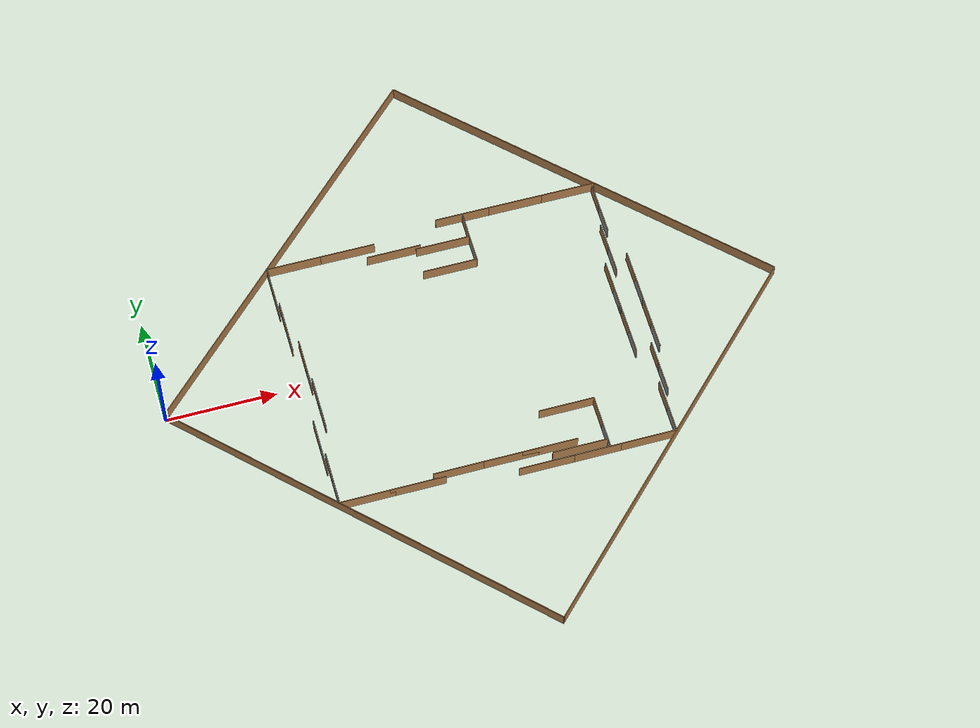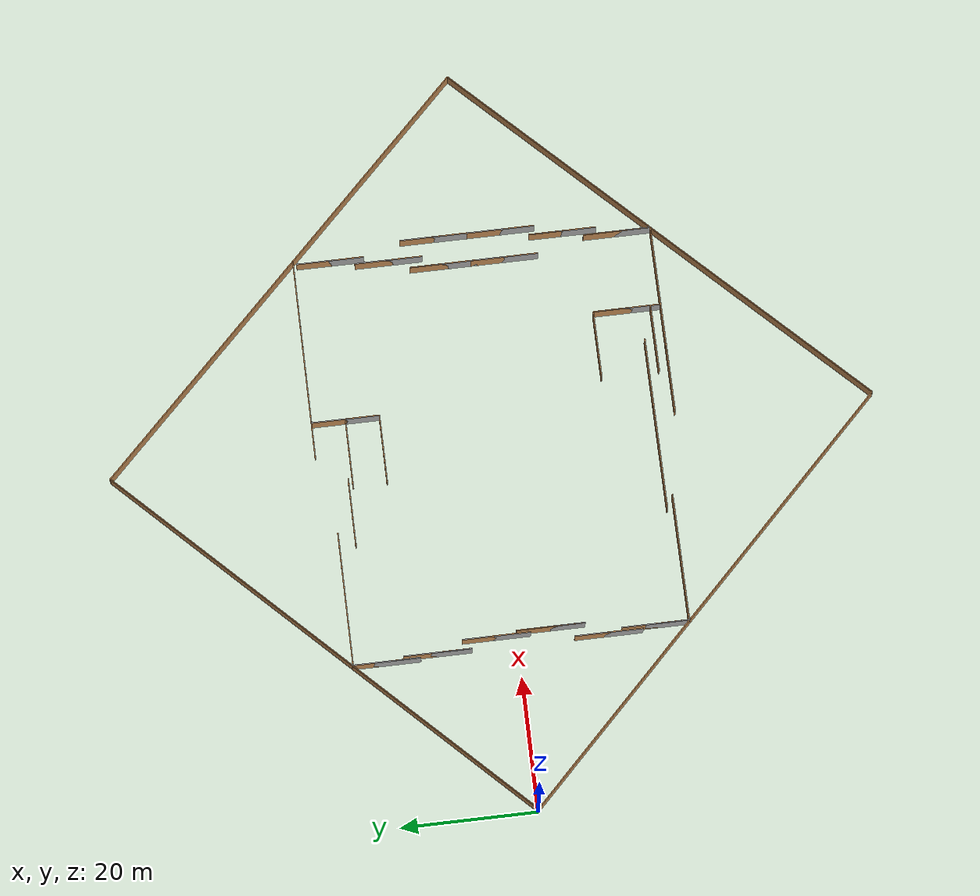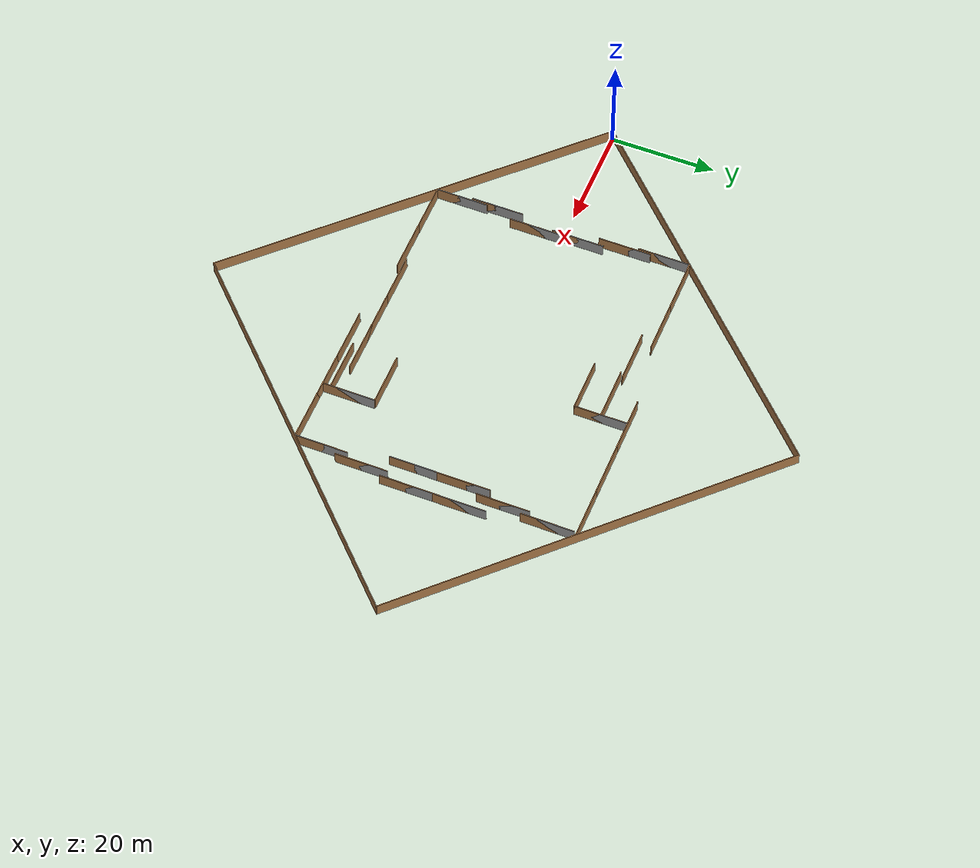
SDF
<sdf version="1.5">
 <world name="__default__">
  <physics name="default_physics" default="0" type="ode">
   <max_step_size>0.001</max_step_size>
   <real_time_factor>1</real_time_factor>
   <real_time_update_rate>1000</real_time_update_rate>
   <gravity>0 0 -9.8</gravity>
   <magnetic_field>5.5645e-06 2.28758e-05 -4.23884e-05</magnetic_field>
  </physics>
  <scene><ambient>0.4 0.4 0.4 1</ambient><background>0.7 0.7 0.7 1</background><shadows>1</shadows></scene>
  <spherical_coordinates>
   <surface_model>EARTH_WGS84</surface_model>
   <latitude_deg>0</latitude_deg>
   <longitude_deg>0</longitude_deg>
   <elevation>0</elevation>
   <heading_deg>0</heading_deg>
  </spherical_coordinates>
  <model name="LoZ">
   <pose>56 -0 0 0 -0 0</pose>
   <link name="Wall_0">
    <collision name="Wall_0_Collision">
     <geometry><box><size>79.346 0.15 2.5</size></box></geometry>
     <pose>0 0 1.25 0 -0 0</pose>
    </collision>
    <visual name="Wall_0_Visual">
     <pose>0 0 1.25 0 -0 0</pose>
     <geometry><box><size>79.346 0.15 2.5</size></box></geometry>
     <material>
      <script><uri>file://media/materials/scripts/gazebo.material</uri><name>Gazebo/Wood</name></script>
      <ambient>1 1 1 1</ambient>
     </material>
    </visual>
    <pose>-28 -28 0 0 0 -0.785398</pose>
   </link>
   <link name="Wall_4">
    <collision name="Wall_4_Collision">
     <geometry><box><size>79.346 0.15 2.5</size></box></geometry>
     <pose>0 0 1.25 0 -0 0</pose>
    </collision>
    <visual name="Wall_4_Visual">
     <pose>0 0 1.25 0 -0 0</pose>
     <geometry><box><size>79.346 0.15 2.5</size></box></geometry>
     <material>
      <script><uri>file://media/materials/scripts/gazebo.material</uri><name>Gazebo/Wood</name></script>
      <ambient>1 1 1 1</ambient>
     </material>
    </visual>
    <pose>-28 28 0 0 -0 0.785398</pose>
   </link>
   <link name="Wall_6">
    <collision name="Wall_6_Collision">
     <geometry><box><size>79.346 0.15 2.5</size></box></geometry>
     <pose>0 0 1.25 0 -0 0</pose>
    </collision>
    <visual name="Wall_6_Visual">
     <pose>0 0 1.25 0 -0 0</pose>
     <geometry><box><size>79.346 0.15 2.5</size></box></geometry>
     <material>
      <script><uri>file://media/materials/scripts/gazebo.material</uri><name>Gazebo/Wood</name></script>
      <ambient>1 1 1 1</ambient>
     </material>
    </visual>
    <pose>28 28 0 0 -0 2.35619</pose>
   </link>
   <link name="Wall_8">
    <collision name="Wall_8_Collision">
     <geometry><box><size>79.346 0.15 2.5</size></box></geometry>
     <pose>0 0 1.25 0 -0 0</pose>
    </collision>
    <visual name="Wall_8_Visual">
     <pose>0 0 1.25 0 -0 0</pose>
     <geometry><box><size>79.346 0.15 2.5</size></box></geometry>
     <material>
      <script><uri>file://media/materials/scripts/gazebo.material</uri><name>Gazebo/Wood</name></script>
      <ambient>1 1 1 1</ambient>
     </material>
    </visual>
    <pose>28 -28 0 0 -0 0.785398</pose>
   </link>
   <static>1</static>
  </model>
  <model name="wall-10m-amodi">
   <pose>24.0911 19.1682 0 0 -0 0</pose>
   <link name="Wall_24">
    <collision name="Wall_24_Collision">
     <geometry><box><size>10 0.15 2.5</size></box></geometry>
     <pose>0 0 1.25 0 -0 0</pose>
    </collision>
    <visual name="Wall_24_Visual">
     <pose>0 0 1.25 0 -0 0</pose>
     <geometry><box><size>10 0.15 2.5</size></box></geometry>
     <material>
      <script><uri>file://media/materials/scripts/gazebo.material</uri><name>Gazebo/Grey</name></script>
      <ambient>1 1 1 1</ambient>
     </material>
    </visual>
    <pose>0 -0 0 0 0 -1.5708</pose>
   </link>
   <link name="Wall_25">
    <collision name="Wall_25_Collision">
     <geometry><box><size>10 0.15 2.5</size></box></geometry>
     <pose>0 0 1.25 0 -0 0</pose>
    </collision>
    <visual name="Wall_25_Visual">
     <pose>0 0 1.25 0 -0 0</pose>
     <geometry><box><size>10 0.15 2.5</size></box></geometry>
     <material>
      <script><uri>file://media/materials/scripts/gazebo.material</uri><name>Gazebo/Wood</name></script>
      <ambient>1 1 1 1</ambient>
     </material>
    </visual>
    <pose>0 -0 0 0 -0 1.5708</pose>
   </link>
   <static>1</static>
  </model>
  <model name="wall-10m-amodi_0">
   <pose>24.5527 11.6245 0 0 -0 0</pose>
   <link name="Wall_24">
    <collision name="Wall_24_Collision">
     <geometry><box><size>10 0.15 2.5</size></box></geometry>
     <pose>0 0 1.25 0 -0 0</pose>
    </collision>
    <visual name="Wall_24_Visual">
     <pose>0 0 1.25 0 -0 0</pose>
     <geometry><box><size>10 0.15 2.5</size></box></geometry>
     <material>
      <script><uri>file://media/materials/scripts/gazebo.material</uri><name>Gazebo/Grey</name></script>
      <ambient>1 1 1 1</ambient>
     </material>
    </visual>
    <pose>0 -0 0 0 0 -1.5708</pose>
   </link>
   <link name="Wall_25">
    <collision name="Wall_25_Collision">
     <geometry><box><size>10 0.15 2.5</size></box></geometry>
     <pose>0 0 1.25 0 -0 0</pose>
    </collision>
    <visual name="Wall_25_Visual">
     <pose>0 0 1.25 0 -0 0</pose>
     <geometry><box><size>10 0.15 2.5</size></box></geometry>
     <material>
      <script><uri>file://media/materials/scripts/gazebo.material</uri><name>Gazebo/Wood</name></script>
      <ambient>1 1 1 1</ambient>
     </material>
    </visual>
    <pose>0 -0 0 0 -0 1.5708</pose>
   </link>
   <static>1</static>
  </model>
  <model name="wall-10m-amodi_1">
   <pose>25.0606 -20.1073 0 0 -0 0</pose>
   <link name="Wall_24">
    <collision name="Wall_24_Collision">
     <geometry><box><size>10 0.15 2.5</size></box></geometry>
     <pose>0 0 1.25 0 -0 0</pose>
    </collision>
    <visual name="Wall_24_Visual">
     <pose>0 0 1.25 0 -0 0</pose>
     <geometry><box><size>10 0.15 2.5</size></box></geometry>
     <material>
      <script><uri>file://media/materials/scripts/gazebo.material</uri><name>Gazebo/Grey</name></script>
      <ambient>1 1 1 1</ambient>
     </material>
    </visual>
    <pose>0 -0 0 0 0 -1.5708</pose>
   </link>
   <link name="Wall_25">
    <collision name="Wall_25_Collision">
     <geometry><box><size>10 0.15 2.5</size></box></geometry>
     <pose>0 0 1.25 0 -0 0</pose>
    </collision>
    <visual name="Wall_25_Visual">
     <pose>0 0 1.25 0 -0 0</pose>
     <geometry><box><size>10 0.15 2.5</size></box></geometry>
     <material>
      <script><uri>file://media/materials/scripts/gazebo.material</uri><name>Gazebo/Wood</name></script>
      <ambient>1 1 1 1</ambient>
     </material>
    </visual>
    <pose>0 -0 0 0 -0 1.5708</pose>
   </link>
   <static>1</static>
  </model>
  <model name="wall-10m-amodi_2">
   <pose>24.6024 -13.2175 0 0 -0 0</pose>
   <link name="Wall_24">
    <collision name="Wall_24_Collision">
     <geometry><box><size>10 0.15 2.5</size></box></geometry>
     <pose>0 0 1.25 0 -0 0</pose>
    </collision>
    <visual name="Wall_24_Visual">
     <pose>0 0 1.25 0 -0 0</pose>
     <geometry><box><size>10 0.15 2.5</size></box></geometry>
     <material>
      <script><uri>file://media/materials/scripts/gazebo.material</uri><name>Gazebo/Grey</name></script>
      <ambient>1 1 1 1</ambient>
     </material>
    </visual>
    <pose>0 -0 0 0 0 -1.5708</pose>
   </link>
   <link name="Wall_25">
    <collision name="Wall_25_Collision">
     <geometry><box><size>10 0.15 2.5</size></box></geometry>
     <pose>0 0 1.25 0 -0 0</pose>
    </collision>
    <visual name="Wall_25_Visual">
     <pose>0 0 1.25 0 -0 0</pose>
     <geometry><box><size>10 0.15 2.5</size></box></geometry>
     <material>
      <script><uri>file://media/materials/scripts/gazebo.material</uri><name>Gazebo/Wood</name></script>
      <ambient>1 1 1 1</ambient>
     </material>
    </visual>
    <pose>0 -0 0 0 -0 1.5708</pose>
   </link>
   <static>1</static>
  </model>
  <model name="wall-10m-amodi_3">
   <pose>26 3 0 0 -0 0</pose>
   <link name="Wall_24">
    <collision name="Wall_24_Collision">
     <geometry><box><size>10 0.15 2.5</size></box></geometry>
     <pose>0 0 1.25 0 -0 0</pose>
    </collision>
    <visual name="Wall_24_Visual">
     <pose>0 0 1.25 0 -0 0</pose>
     <geometry><box><size>10 0.15 2.5</size></box></geometry>
     <material>
      <script><uri>file://media/materials/scripts/gazebo.material</uri><name>Gazebo/Grey</name></script>
      <ambient>1 1 1 1</ambient>
     </material>
    </visual>
    <pose>0 -0 0 0 0 -1.5708</pose>
   </link>
   <link name="Wall_25">
    <collision name="Wall_25_Collision">
     <geometry><box><size>10 0.15 2.5</size></box></geometry>
     <pose>0 0 1.25 0 -0 0</pose>
    </collision>
    <visual name="Wall_25_Visual">
     <pose>0 0 1.25 0 -0 0</pose>
     <geometry><box><size>10 0.15 2.5</size></box></geometry>
     <material>
      <script><uri>file://media/materials/scripts/gazebo.material</uri><name>Gazebo/Wood</name></script>
      <ambient>1 1 1 1</ambient>
     </material>
    </visual>
    <pose>0 -0 0 0 -0 1.5708</pose>
   </link>
   <static>1</static>
  </model>
  <model name="wall-10m-amodi_4">
   <pose>26.4413 -5 0 0 -0 0</pose>
   <link name="Wall_24">
    <collision name="Wall_24_Collision">
     <geometry><box><size>10 0.15 2.5</size></box></geometry>
     <pose>0 0 1.25 0 -0 0</pose>
    </collision>
    <visual name="Wall_24_Visual">
     <pose>0 0 1.25 0 -0 0</pose>
     <geometry><box><size>10 0.15 2.5</size></box></geometry>
     <material>
      <script><uri>file://media/materials/scripts/gazebo.material</uri><name>Gazebo/Grey</name></script>
      <ambient>1 1 1 1</ambient>
     </material>
    </visual>
    <pose>0 -0 0 0 0 -1.5708</pose>
   </link>
   <link name="Wall_25">
    <collision name="Wall_25_Collision">
     <geometry><box><size>10 0.15 2.5</size></box></geometry>
     <pose>0 0 1.25 0 -0 0</pose>
    </collision>
    <visual name="Wall_25_Visual">
     <pose>0 0 1.25 0 -0 0</pose>
     <geometry><box><size>10 0.15 2.5</size></box></geometry>
     <material>
      <script><uri>file://media/materials/scripts/gazebo.material</uri><name>Gazebo/Wood</name></script>
      <ambient>1 1 1 1</ambient>
     </material>
    </visual>
    <pose>0 -0 0 0 -0 1.5708</pose>
   </link>
   <static>1</static>
  </model>
  <model name="wall-10m-ofoghi">
   <pose>29 24 0 0 -0 0</pose>
   <link name="Wall_22">
    <collision name="Wall_22_Collision">
     <geometry><box><size>10 0.15 2.5</size></box></geometry>
     <pose>0 0 1.25 0 -0 0</pose>
    </collision>
    <visual name="Wall_22_Visual">
     <pose>0 0 1.25 0 -0 0</pose>
     <geometry><box><size>10 0.15 2.5</size></box></geometry>
     <material>
      <script><uri>file://media/materials/scripts/gazebo.material</uri><name>Gazebo/Wood</name></script>
      <ambient>1 1 1 1</ambient>
     </material>
    </visual>
   </link>
   <static>1</static>
  </model>
  <model name="wall-10m-ofoghi_0">
   <pose>39 24 0 0 -0 0</pose>
   <link name="Wall_22">
    <collision name="Wall_22_Collision">
     <geometry><box><size>10 0.15 2.5</size></box></geometry>
     <pose>0 0 1.25 0 -0 0</pose>
    </collision>
    <visual name="Wall_22_Visual">
     <pose>0 0 1.25 0 -0 0</pose>
     <geometry><box><size>10 0.15 2.5</size></box></geometry>
     <material>
      <script><uri>file://media/materials/scripts/gazebo.material</uri><name>Gazebo/Wood</name></script>
      <ambient>1 1 1 1</ambient>
     </material>
    </visual>
   </link>
   <static>1</static>
  </model>
  <model name="wall-10m-ofoghi_1">
   <pose>47 21.5949 0 0 -0 0</pose>
   <link name="Wall_22">
    <collision name="Wall_22_Collision">
     <geometry><box><size>10 0.15 2.5</size></box></geometry>
     <pose>0 0 1.25 0 -0 0</pose>
    </collision>
    <visual name="Wall_22_Visual">
     <pose>0 0 1.25 0 -0 0</pose>
     <geometry><box><size>10 0.15 2.5</size></box></geometry>
     <material>
      <script><uri>file://media/materials/scripts/gazebo.material</uri><name>Gazebo/Wood</name></script>
      <ambient>1 1 1 1</ambient>
     </material>
    </visual>
   </link>
   <static>1</static>
  </model>
  <model name="wall-10m-ofoghi_2">
   <pose>56 21 0 0 -0 0</pose>
   <link name="Wall_22">
    <collision name="Wall_22_Collision">
     <geometry><box><size>10 0.15 2.5</size></box></geometry>
     <pose>0 0 1.25 0 -0 0</pose>
    </collision>
    <visual name="Wall_22_Visual">
     <pose>0 0 1.25 0 -0 0</pose>
     <geometry><box><size>10 0.15 2.5</size></box></geometry>
     <material>
      <script><uri>file://media/materials/scripts/gazebo.material</uri><name>Gazebo/Wood</name></script>
      <ambient>1 1 1 1</ambient>
     </material>
    </visual>
   </link>
   <static>1</static>
  </model>
  <model name="wall-10m-ofoghi_3">
   <pose>81 26 0 0 -0 0</pose>
   <link name="Wall_22">
    <collision name="Wall_22_Collision">
     <geometry><box><size>10 0.15 2.5</size></box></geometry>
     <pose>0 0 1.25 0 -0 0</pose>
    </collision>
    <visual name="Wall_22_Visual">
     <pose>0 0 1.25 0 -0 0</pose>
     <geometry><box><size>10 0.15 2.5</size></box></geometry>
     <material>
      <script><uri>file://media/materials/scripts/gazebo.material</uri><name>Gazebo/Wood</name></script>
      <ambient>1 1 1 1</ambient>
     </material>
    </visual>
   </link>
   <static>1</static>
  </model>
  <model name="wall-10m-ofoghi_4">
   <pose>71 26 0 0 -0 0</pose>
   <link name="Wall_22">
    <collision name="Wall_22_Collision">
     <geometry><box><size>10 0.15 2.5</size></box></geometry>
     <pose>0 0 1.25 0 -0 0</pose>
    </collision>
    <visual name="Wall_22_Visual">
     <pose>0 0 1.25 0 -0 0</pose>
     <geometry><box><size>10 0.15 2.5</size></box></geometry>
     <material>
      <script><uri>file://media/materials/scripts/gazebo.material</uri><name>Gazebo/Wood</name></script>
      <ambient>1 1 1 1</ambient>
     </material>
    </visual>
   </link>
   <static>1</static>
  </model>
  <model name="wall-10m-ofoghi_5">
   <pose>61 26 0 0 -0 0</pose>
   <link name="Wall_22">
    <collision name="Wall_22_Collision">
     <geometry><box><size>10 0.15 2.5</size></box></geometry>
     <pose>0 0 1.25 0 -0 0</pose>
    </collision>
    <visual name="Wall_22_Visual">
     <pose>0 0 1.25 0 -0 0</pose>
     <geometry><box><size>10 0.15 2.5</size></box></geometry>
     <material>
      <script><uri>file://media/materials/scripts/gazebo.material</uri><name>Gazebo/Wood</name></script>
      <ambient>1 1 1 1</ambient>
     </material>
    </visual>
   </link>
   <static>1</static>
  </model>
  <model name="wall-10m-ofoghi_3_clone">
   <pose>30 -25 0 0 -0 0</pose>
   <link name="Wall_22">
    <collision name="Wall_22_Collision">
     <geometry><box><size>10 0.15 2.5</size></box></geometry>
     <pose>0 0 1.25 0 -0 0</pose>
    </collision>
    <visual name="Wall_22_Visual">
     <pose>0 0 1.25 0 -0 0</pose>
     <geometry><box><size>10 0.15 2.5</size></box></geometry>
     <material>
      <script><uri>file://media/materials/scripts/gazebo.material</uri><name>Gazebo/Wood</name></script>
      <ambient>1 1 1 1</ambient>
     </material>
    </visual>
   </link>
   <static>1</static>
  </model>
  <model name="wall-10m-ofoghi_3_clone_0">
   <pose>39 -25 0 0 -0 0</pose>
   <link name="Wall_22">
    <collision name="Wall_22_Collision">
     <geometry><box><size>10 0.15 2.5</size></box></geometry>
     <pose>0 0 1.25 0 -0 0</pose>
    </collision>
    <visual name="Wall_22_Visual">
     <pose>0 0 1.25 0 -0 0</pose>
     <geometry><box><size>10 0.15 2.5</size></box></geometry>
     <material>
      <script><uri>file://media/materials/scripts/gazebo.material</uri><name>Gazebo/Wood</name></script>
      <ambient>1 1 1 1</ambient>
     </material>
    </visual>
   </link>
   <static>1</static>
  </model>
  <model name="wall-10m-ofoghi_3_clone_1">
   <pose>80 -27 0 0 -0 0</pose>
   <link name="Wall_22">
    <collision name="Wall_22_Collision">
     <geometry><box><size>10 0.15 2.5</size></box></geometry>
     <pose>0 0 1.25 0 -0 0</pose>
    </collision>
    <visual name="Wall_22_Visual">
     <pose>0 0 1.25 0 -0 0</pose>
     <geometry><box><size>10 0.15 2.5</size></box></geometry>
     <material>
      <script><uri>file://media/materials/scripts/gazebo.material</uri><name>Gazebo/Wood</name></script>
      <ambient>1 1 1 1</ambient>
     </material>
    </visual>
   </link>
   <static>1</static>
  </model>
  <model name="wall-10m-ofoghi_3_clone_2">
   <pose>70.4875 -27 0 0 -0 0</pose>
   <link name="Wall_22">
    <collision name="Wall_22_Collision">
     <geometry><box><size>10 0.15 2.5</size></box></geometry>
     <pose>0 0 1.25 0 -0 0</pose>
    </collision>
    <visual name="Wall_22_Visual">
     <pose>0 0 1.25 0 -0 0</pose>
     <geometry><box><size>10 0.15 2.5</size></box></geometry>
     <material>
      <script><uri>file://media/materials/scripts/gazebo.material</uri><name>Gazebo/Wood</name></script>
      <ambient>1 1 1 1</ambient>
     </material>
    </visual>
   </link>
   <static>1</static>
  </model>
  <model name="wall-10m-ofoghi_3_clone_3">
   <pose>61.5344 -27 0 0 -0 0</pose>
   <link name="Wall_22">
    <collision name="Wall_22_Collision">
     <geometry><box><size>10 0.15 2.5</size></box></geometry>
     <pose>0 0 1.25 0 -0 0</pose>
    </collision>
    <visual name="Wall_22_Visual">
     <pose>0 0 1.25 0 -0 0</pose>
     <geometry><box><size>10 0.15 2.5</size></box></geometry>
     <material>
      <script><uri>file://media/materials/scripts/gazebo.material</uri><name>Gazebo/Wood</name></script>
      <ambient>1 1 1 1</ambient>
     </material>
    </visual>
   </link>
   <static>1</static>
  </model>
  <model name="wall-10m-ofoghi_3_clone_4">
   <pose>47 -24 0 0 -0 0</pose>
   <link name="Wall_22">
    <collision name="Wall_22_Collision">
     <geometry><box><size>10 0.15 2.5</size></box></geometry>
     <pose>0 0 1.25 0 -0 0</pose>
    </collision>
    <visual name="Wall_22_Visual">
     <pose>0 0 1.25 0 -0 0</pose>
     <geometry><box><size>10 0.15 2.5</size></box></geometry>
     <material>
      <script><uri>file://media/materials/scripts/gazebo.material</uri><name>Gazebo/Wood</name></script>
      <ambient>1 1 1 1</ambient>
     </material>
    </visual>
   </link>
   <static>1</static>
  </model>
  <model name="wall-10m-ofoghi_3_clone_5">
   <pose>56 -24 0 0 -0 0</pose>
   <link name="Wall_22">
    <collision name="Wall_22_Collision">
     <geometry><box><size>10 0.15 2.5</size></box></geometry>
     <pose>0 0 1.25 0 -0 0</pose>
    </collision>
    <visual name="Wall_22_Visual">
     <pose>0 0 1.25 0 -0 0</pose>
     <geometry><box><size>10 0.15 2.5</size></box></geometry>
     <material>
      <script><uri>file://media/materials/scripts/gazebo.material</uri><name>Gazebo/Wood</name></script>
      <ambient>1 1 1 1</ambient>
     </material>
    </visual>
   </link>
   <static>1</static>
  </model>
  <model name="wall-10m-ofoghi_3_clone_6">
   <pose>63 -24 0 0 -0 0</pose>
   <link name="Wall_22">
    <collision name="Wall_22_Collision">
     <geometry><box><size>10 0.15 2.5</size></box></geometry>
     <pose>0 0 1.25 0 -0 0</pose>
    </collision>
    <visual name="Wall_22_Visual">
     <pose>0 0 1.25 0 -0 0</pose>
     <geometry><box><size>10 0.15 2.5</size></box></geometry>
     <material>
      <script><uri>file://media/materials/scripts/gazebo.material</uri><name>Gazebo/Wood</name></script>
      <ambient>1 1 1 1</ambient>
     </material>
    </visual>
   </link>
   <static>1</static>
  </model>
  <model name="wall-10m-amodi_2_clone">
   <pose>85 -22 0 0 -0 0</pose>
   <link name="Wall_24">
    <collision name="Wall_24_Collision">
     <geometry><box><size>10 0.15 2.5</size></box></geometry>
     <pose>0 0 1.25 0 -0 0</pose>
    </collision>
    <visual name="Wall_24_Visual">
     <pose>0 0 1.25 0 -0 0</pose>
     <geometry><box><size>10 0.15 2.5</size></box></geometry>
     <material>
      <script><uri>file://media/materials/scripts/gazebo.material</uri><name>Gazebo/Grey</name></script>
      <ambient>1 1 1 1</ambient>
     </material>
    </visual>
    <pose>0 -0 0 0 0 -1.5708</pose>
   </link>
   <link name="Wall_25">
    <collision name="Wall_25_Collision">
     <geometry><box><size>10 0.15 2.5</size></box></geometry>
     <pose>0 0 1.25 0 -0 0</pose>
    </collision>
    <visual name="Wall_25_Visual">
     <pose>0 0 1.25 0 -0 0</pose>
     <geometry><box><size>10 0.15 2.5</size></box></geometry>
     <material>
      <script><uri>file://media/materials/scripts/gazebo.material</uri><name>Gazebo/Wood</name></script>
      <ambient>1 1 1 1</ambient>
     </material>
    </visual>
    <pose>0 -0 0 0 -0 1.5708</pose>
   </link>
   <static>1</static>
  </model>
  <model name="wall-10m-amodi_2_clone_0">
   <pose>86 -14 0 0 -0 0</pose>
   <link name="Wall_24">
    <collision name="Wall_24_Collision">
     <geometry><box><size>10 0.15 2.5</size></box></geometry>
     <pose>0 0 1.25 0 -0 0</pose>
    </collision>
    <visual name="Wall_24_Visual">
     <pose>0 0 1.25 0 -0 0</pose>
     <geometry><box><size>10 0.15 2.5</size></box></geometry>
     <material>
      <script><uri>file://media/materials/scripts/gazebo.material</uri><name>Gazebo/Grey</name></script>
      <ambient>1 1 1 1</ambient>
     </material>
    </visual>
    <pose>0 -0 0 0 0 -1.5708</pose>
   </link>
   <link name="Wall_25">
    <collision name="Wall_25_Collision">
     <geometry><box><size>10 0.15 2.5</size></box></geometry>
     <pose>0 0 1.25 0 -0 0</pose>
    </collision>
    <visual name="Wall_25_Visual">
     <pose>0 0 1.25 0 -0 0</pose>
     <geometry><box><size>10 0.15 2.5</size></box></geometry>
     <material>
      <script><uri>file://media/materials/scripts/gazebo.material</uri><name>Gazebo/Wood</name></script>
      <ambient>1 1 1 1</ambient>
     </material>
    </visual>
    <pose>0 -0 0 0 -0 1.5708</pose>
   </link>
   <static>1</static>
  </model>
  <model name="wall-10m-amodi_2_clone_1">
   <pose>85.467 20.5363 0 0 -0 0</pose>
   <link name="Wall_24">
    <collision name="Wall_24_Collision">
     <geometry><box><size>10 0.15 2.5</size></box></geometry>
     <pose>0 0 1.25 0 -0 0</pose>
    </collision>
    <visual name="Wall_24_Visual">
     <pose>0 0 1.25 0 -0 0</pose>
     <geometry><box><size>10 0.15 2.5</size></box></geometry>
     <material>
      <script><uri>file://media/materials/scripts/gazebo.material</uri><name>Gazebo/Grey</name></script>
      <ambient>1 1 1 1</ambient>
     </material>
    </visual>
    <pose>0 -0 0 0 0 -1.5708</pose>
   </link>
   <link name="Wall_25">
    <collision name="Wall_25_Collision">
     <geometry><box><size>10 0.15 2.5</size></box></geometry>
     <pose>0 0 1.25 0 -0 0</pose>
    </collision>
    <visual name="Wall_25_Visual">
     <pose>0 0 1.25 0 -0 0</pose>
     <geometry><box><size>10 0.15 2.5</size></box></geometry>
     <material>
      <script><uri>file://media/materials/scripts/gazebo.material</uri><name>Gazebo/Wood</name></script>
      <ambient>1 1 1 1</ambient>
     </material>
    </visual>
    <pose>0 -0 0 0 -0 1.5708</pose>
   </link>
   <static>1</static>
  </model>
  <model name="wall-10m-amodi_2_clone_2">
   <pose>84.537 12 0 0 -0 0</pose>
   <link name="Wall_24">
    <collision name="Wall_24_Collision">
     <geometry><box><size>10 0.15 2.5</size></box></geometry>
     <pose>0 0 1.25 0 -0 0</pose>
    </collision>
    <visual name="Wall_24_Visual">
     <pose>0 0 1.25 0 -0 0</pose>
     <geometry><box><size>10 0.15 2.5</size></box></geometry>
     <material>
      <script><uri>file://media/materials/scripts/gazebo.material</uri><name>Gazebo/Grey</name></script>
      <ambient>1 1 1 1</ambient>
     </material>
    </visual>
    <pose>0 -0 0 0 0 -1.5708</pose>
   </link>
   <link name="Wall_25">
    <collision name="Wall_25_Collision">
     <geometry><box><size>10 0.15 2.5</size></box></geometry>
     <pose>0 0 1.25 0 -0 0</pose>
    </collision>
    <visual name="Wall_25_Visual">
     <pose>0 0 1.25 0 -0 0</pose>
     <geometry><box><size>10 0.15 2.5</size></box></geometry>
     <material>
      <script><uri>file://media/materials/scripts/gazebo.material</uri><name>Gazebo/Wood</name></script>
      <ambient>1 1 1 1</ambient>
     </material>
    </visual>
    <pose>0 -0 0 0 -0 1.5708</pose>
   </link>
   <static>1</static>
  </model>
  <model name="wall-10m-amodi_2_clone_3">
   <pose>83 4 0 0 -0 0</pose>
   <link name="Wall_24">
    <collision name="Wall_24_Collision">
     <geometry><box><size>10 0.15 2.5</size></box></geometry>
     <pose>0 0 1.25 0 -0 0</pose>
    </collision>
    <visual name="Wall_24_Visual">
     <pose>0 0 1.25 0 -0 0</pose>
     <geometry><box><size>10 0.15 2.5</size></box></geometry>
     <material>
      <script><uri>file://media/materials/scripts/gazebo.material</uri><name>Gazebo/Grey</name></script>
      <ambient>1 1 1 1</ambient>
     </material>
    </visual>
    <pose>0 -0 0 0 0 -1.5708</pose>
   </link>
   <link name="Wall_25">
    <collision name="Wall_25_Collision">
     <geometry><box><size>10 0.15 2.5</size></box></geometry>
     <pose>0 0 1.25 0 -0 0</pose>
    </collision>
    <visual name="Wall_25_Visual">
     <pose>0 0 1.25 0 -0 0</pose>
     <geometry><box><size>10 0.15 2.5</size></box></geometry>
     <material>
      <script><uri>file://media/materials/scripts/gazebo.material</uri><name>Gazebo/Wood</name></script>
      <ambient>1 1 1 1</ambient>
     </material>
    </visual>
    <pose>0 -0 0 0 -0 1.5708</pose>
   </link>
   <static>1</static>
  </model>
  <model name="wall-10m-amodi_2_clone_4">
   <pose>83 -5 0 0 -0 0</pose>
   <link name="Wall_24">
    <collision name="Wall_24_Collision">
     <geometry><box><size>10 0.15 2.5</size></box></geometry>
     <pose>0 0 1.25 0 -0 0</pose>
    </collision>
    <visual name="Wall_24_Visual">
     <pose>0 0 1.25 0 -0 0</pose>
     <geometry><box><size>10 0.15 2.5</size></box></geometry>
     <material>
      <script><uri>file://media/materials/scripts/gazebo.material</uri><name>Gazebo/Grey</name></script>
      <ambient>1 1 1 1</ambient>
     </material>
    </visual>
    <pose>0 -0 0 0 0 -1.5708</pose>
   </link>
   <link name="Wall_25">
    <collision name="Wall_25_Collision">
     <geometry><box><size>10 0.15 2.5</size></box></geometry>
     <pose>0 0 1.25 0 -0 0</pose>
    </collision>
    <visual name="Wall_25_Visual">
     <pose>0 0 1.25 0 -0 0</pose>
     <geometry><box><size>10 0.15 2.5</size></box></geometry>
     <material>
      <script><uri>file://media/materials/scripts/gazebo.material</uri><name>Gazebo/Wood</name></script>
      <ambient>1 1 1 1</ambient>
     </material>
    </visual>
    <pose>0 -0 0 0 -0 1.5708</pose>
   </link>
   <static>1</static>
  </model>
  <model name="wall-10m-amodi_2_clone_5">
   <pose>87.3129 -5.02217 0 0 -0 0</pose>
   <link name="Wall_24">
    <collision name="Wall_24_Collision">
     <geometry><box><size>10 0.15 2.5</size></box></geometry>
     <pose>0 0 1.25 0 -0 0</pose>
    </collision>
    <visual name="Wall_24_Visual">
     <pose>0 0 1.25 0 -0 0</pose>
     <geometry><box><size>10 0.15 2.5</size></box></geometry>
     <material>
      <script><uri>file://media/materials/scripts/gazebo.material</uri><name>Gazebo/Grey</name></script>
      <ambient>1 1 1 1</ambient>
     </material>
    </visual>
    <pose>0 -0 0 0 0 -1.5708</pose>
   </link>
   <link name="Wall_25">
    <collision name="Wall_25_Collision">
     <geometry><box><size>10 0.15 2.5</size></box></geometry>
     <pose>0 0 1.25 0 -0 0</pose>
    </collision>
    <visual name="Wall_25_Visual">
     <pose>0 0 1.25 0 -0 0</pose>
     <geometry><box><size>10 0.15 2.5</size></box></geometry>
     <material>
      <script><uri>file://media/materials/scripts/gazebo.material</uri><name>Gazebo/Wood</name></script>
      <ambient>1 1 1 1</ambient>
     </material>
    </visual>
    <pose>0 -0 0 0 -0 1.5708</pose>
   </link>
   <static>1</static>
  </model>
  <model name="wall-10m-amodi_2_clone_6">
   <pose>87.3264 5 0 0 -0 0</pose>
   <link name="Wall_24">
    <collision name="Wall_24_Collision">
     <geometry><box><size>10 0.15 2.5</size></box></geometry>
     <pose>0 0 1.25 0 -0 0</pose>
    </collision>
    <visual name="Wall_24_Visual">
     <pose>0 0 1.25 0 -0 0</pose>
     <geometry><box><size>10 0.15 2.5</size></box></geometry>
     <material>
      <script><uri>file://media/materials/scripts/gazebo.material</uri><name>Gazebo/Grey</name></script>
      <ambient>1 1 1 1</ambient>
     </material>
    </visual>
    <pose>0 -0 0 0 0 -1.5708</pose>
   </link>
   <link name="Wall_25">
    <collision name="Wall_25_Collision">
     <geometry><box><size>10 0.15 2.5</size></box></geometry>
     <pose>0 0 1.25 0 -0 0</pose>
    </collision>
    <visual name="Wall_25_Visual">
     <pose>0 0 1.25 0 -0 0</pose>
     <geometry><box><size>10 0.15 2.5</size></box></geometry>
     <material>
      <script><uri>file://media/materials/scripts/gazebo.material</uri><name>Gazebo/Wood</name></script>
      <ambient>1 1 1 1</ambient>
     </material>
    </visual>
    <pose>0 -0 0 0 -0 1.5708</pose>
   </link>
   <static>1</static>
  </model>
  <model name="wall-10m-amodi_5">
   <pose>61 21 0 0 -0 0</pose>
   <link name="Wall_24">
    <collision name="Wall_24_Collision">
     <geometry><box><size>10 0.15 2.5</size></box></geometry>
     <pose>0 0 1.25 0 -0 0</pose>
    </collision>
    <visual name="Wall_24_Visual">
     <pose>0 0 1.25 0 -0 0</pose>
     <geometry><box><size>10 0.15 2.5</size></box></geometry>
     <material>
      <script><uri>file://media/materials/scripts/gazebo.material</uri><name>Gazebo/Grey</name></script>
      <ambient>1 1 1 1</ambient>
     </material>
    </visual>
    <pose>0 -0 0 0 0 -1.5708</pose>
   </link>
   <link name="Wall_25">
    <collision name="Wall_25_Collision">
     <geometry><box><size>10 0.15 2.5</size></box></geometry>
     <pose>0 0 1.25 0 -0 0</pose>
    </collision>
    <visual name="Wall_25_Visual">
     <pose>0 0 1.25 0 -0 0</pose>
     <geometry><box><size>10 0.15 2.5</size></box></geometry>
     <material>
      <script><uri>file://media/materials/scripts/gazebo.material</uri><name>Gazebo/Wood</name></script>
      <ambient>1 1 1 1</ambient>
     </material>
    </visual>
    <pose>0 -0 0 0 -0 1.5708</pose>
   </link>
   <static>1</static>
  </model>
  <model name="wall-10m-ofoghi_7">
   <pose>56 16 0 0 -0 0</pose>
   <link name="Wall_22">
    <collision name="Wall_22_Collision">
     <geometry><box><size>10 0.15 2.5</size></box></geometry>
     <pose>0 0 1.25 0 -0 0</pose>
    </collision>
    <visual name="Wall_22_Visual">
     <pose>0 0 1.25 0 -0 0</pose>
     <geometry><box><size>10 0.15 2.5</size></box></geometry>
     <material>
      <script><uri>file://media/materials/scripts/gazebo.material</uri><name>Gazebo/Wood</name></script>
      <ambient>1 1 1 1</ambient>
     </material>
    </visual>
   </link>
   <static>1</static>
  </model>
  <model name="wall-10m-ofoghi_8">
   <pose>68 -25.4857 0 0 -0 0</pose>
   <link name="Wall_22">
    <collision name="Wall_22_Collision">
     <geometry><box><size>10 0.15 2.5</size></box></geometry>
     <pose>0 0 1.25 0 -0 0</pose>
    </collision>
    <visual name="Wall_22_Visual">
     <pose>0 0 1.25 0 -0 0</pose>
     <geometry><box><size>10 0.15 2.5</size></box></geometry>
     <material>
      <script><uri>file://media/materials/scripts/gazebo.material</uri><name>Gazebo/Wood</name></script>
      <ambient>1 1 1 1</ambient>
     </material>
    </visual>
   </link>
   <static>1</static>
  </model>
  <model name="wall-10m-amodi_6">
   <pose>73 -22 0 0 -0 0</pose>
   <link name="Wall_24">
    <collision name="Wall_24_Collision">
     <geometry><box><size>10 0.15 2.5</size></box></geometry>
     <pose>0 0 1.25 0 -0 0</pose>
    </collision>
    <visual name="Wall_24_Visual">
     <pose>0 0 1.25 0 -0 0</pose>
     <geometry><box><size>10 0.15 2.5</size></box></geometry>
     <material>
      <script><uri>file://media/materials/scripts/gazebo.material</uri><name>Gazebo/Grey</name></script>
      <ambient>1 1 1 1</ambient>
     </material>
    </visual>
    <pose>0 -0 0 0 0 -1.5708</pose>
   </link>
   <link name="Wall_25">
    <collision name="Wall_25_Collision">
     <geometry><box><size>10 0.15 2.5</size></box></geometry>
     <pose>0 0 1.25 0 -0 0</pose>
    </collision>
    <visual name="Wall_25_Visual">
     <pose>0 0 1.25 0 -0 0</pose>
     <geometry><box><size>10 0.15 2.5</size></box></geometry>
     <material>
      <script><uri>file://media/materials/scripts/gazebo.material</uri><name>Gazebo/Wood</name></script>
      <ambient>1 1 1 1</ambient>
     </material>
    </visual>
    <pose>0 -0 0 0 -0 1.5708</pose>
   </link>
   <static>1</static>
  </model>
  <model name="wall-10m-ofoghi_9">
   <pose>68 -17 0 0 -0 0</pose>
   <link name="Wall_22">
    <collision name="Wall_22_Collision">
     <geometry><box><size>10 0.15 2.5</size></box></geometry>
     <pose>0 0 1.25 0 -0 0</pose>
    </collision>
    <visual name="Wall_22_Visual">
     <pose>0 0 1.25 0 -0 0</pose>
     <geometry><box><size>10 0.15 2.5</size></box></geometry>
     <material>
      <script><uri>file://media/materials/scripts/gazebo.material</uri><name>Gazebo/Wood</name></script>
      <ambient>1 1 1 1</ambient>
     </material>
    </visual>
   </link>
   <static>1</static>
  </model>
 </world>
</sdf>
